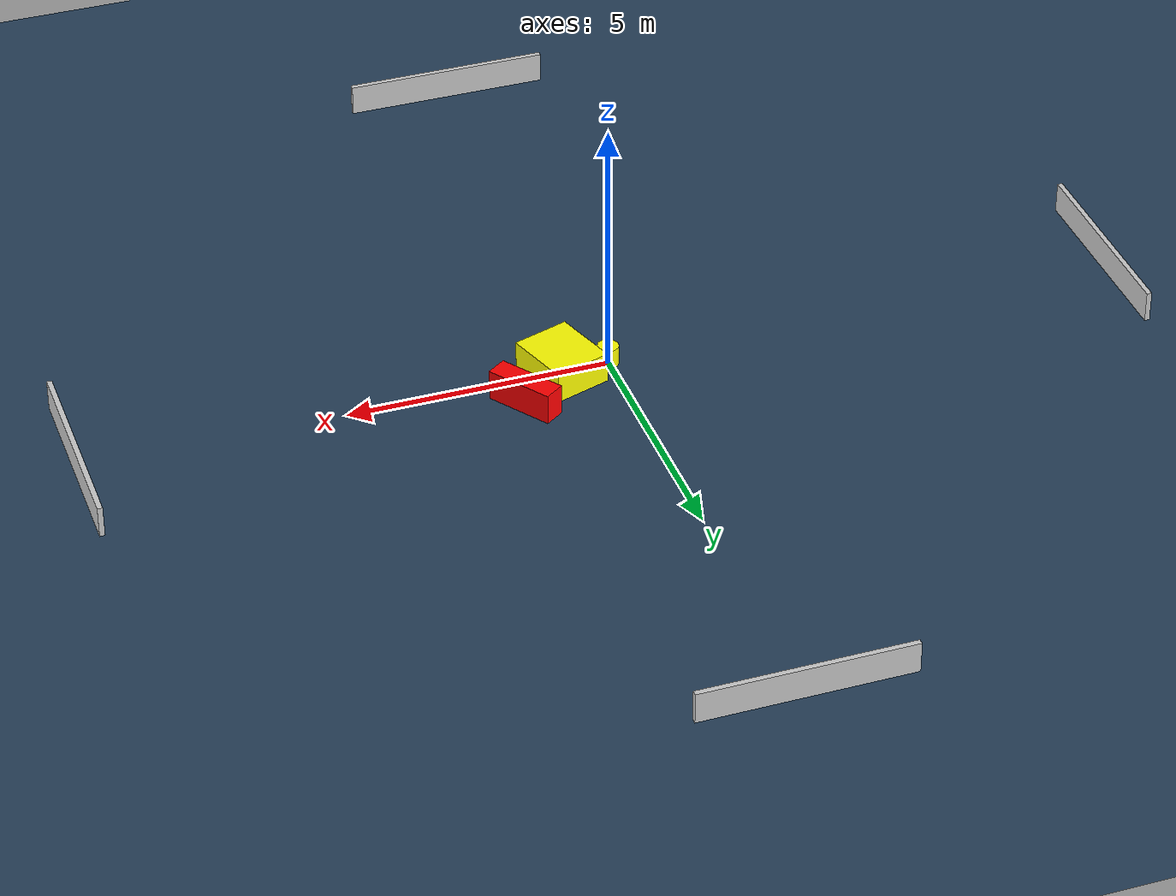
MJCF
<?xml version="1.0" ?>
<mujoco model="generated_environment">
  <option timestep="0.01" integrator="RK4" cone="elliptic"/>
  <default>
    <geom density="1"/>
  </default>
  <asset>
    <texture builtin="gradient" height="3072" name="skybox" rgb1="0.3 0.5 0.7" rgb2="0 0 0" type="skybox" width="512"/>
    <texture builtin="checker" height="300" name="groundplane" rgb1="0.2 0.3 0.4" rgb2="0.1 0.2 0.3" type="2d" width="300"/>
    <material name="groundplane" reflectance="0.2" texrepeat="5 5" texture="groundplane"/>
  </asset>
  <worldbody>
    <light dir="0 0 -1" directional="true" pos="0 0 1.5"/>
    <geom condim="3" friction="0.5 0.005 0.001" material="groundplane" name="floor" pos="0 0 0" size="0 0 0.05" type="plane"/>
    <body name="walls">
      <geom name="wall_1" condim="4" pos="-10.0 0.0 0.3" rgba="0.800000011920929 0.800000011920929 0.800000011920929 1.0" size="0.05 2.0 0.3" type="box"/>
      <geom name="wall_2" condim="4" pos="10.0 0.0 0.3" rgba="0.800000011920929 0.800000011920929 0.800000011920929 1.0" size="0.05 2.0 0.3" type="box"/>
      <geom name="wall_3" condim="4" pos="0.0 -10.0 0.3" rgba="0.800000011920929 0.800000011920929 0.800000011920929 1.0" size="2.0 0.05 0.3" type="box"/>
      <geom name="wall_4" condim="4" pos="0.0 10.0 0.3" rgba="0.800000011920929 0.800000011920929 0.800000011920929 1.0" size="2.0 0.05 0.3" type="box"/>
    </body>
    <body name="robot">
      <joint name="joint_x" type="slide" pos="0 0 0" axis="1 0 0"/>
      <joint name="joint_y" type="slide" pos="0 0 0" axis="0 1 0"/>
      <geom name="robot" type="cylinder" pos="0.0 0.0 0.2" size="0.2 0.2 0.0" mass="5.0" friction="1.0 0.005 0.0001" condim="4" rgba="1.0 1.0 0.0 1.0"/>
    </body>
    <body name="obstacle_1_movable">
      <geom name="obstacle_1_movable" condim="4" pos="0.925352871684833 0.07447918959209354 0.3" euler="0 0 288.07483905097" friction="0.0 0.005 0.001" rgba="1.0 1.0 0.0 1.0" size="0.6522972018587251 0.5615397086291359 0.3" type="box" mass="0.1"/>
      <joint type="free"/>
    </body>
    <body name="obstacle_2_static">
      <geom name="obstacle_2_static" condim="4" pos="1.847562964865593 0.755983889508506 0.3" euler="0 0 214.56765952107884" friction="0.0 0.005 0.001" rgba="1.0 0.0 0.0 1.0" size="0.21015482094884896 0.6647738914666792 0.3" type="box"/>
    </body>
  </worldbody>
  <actuator>
    <motor name="actuator_x" joint="joint_x" gear="1" ctrlrange="-1 1"/>
    <motor name="actuator_y" joint="joint_y" gear="1" ctrlrange="-1 1"/>
  </actuator>
</mujoco>
